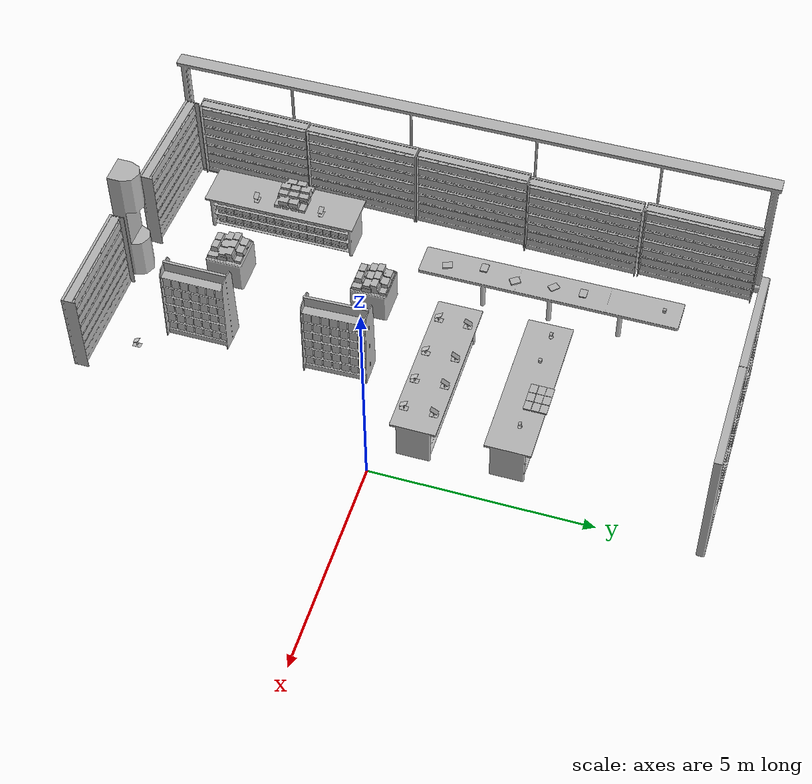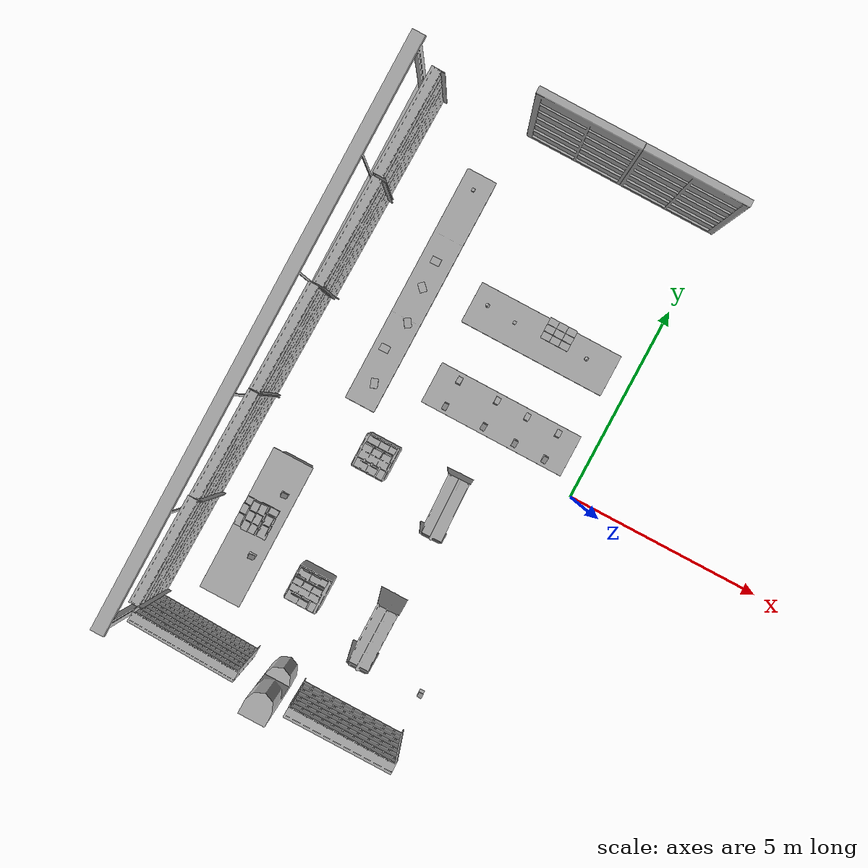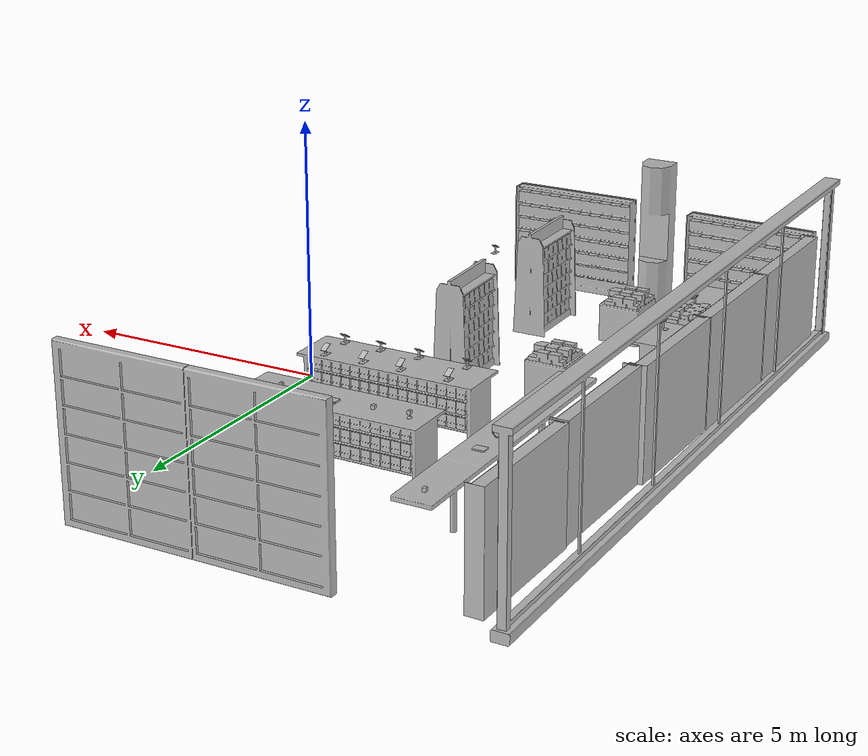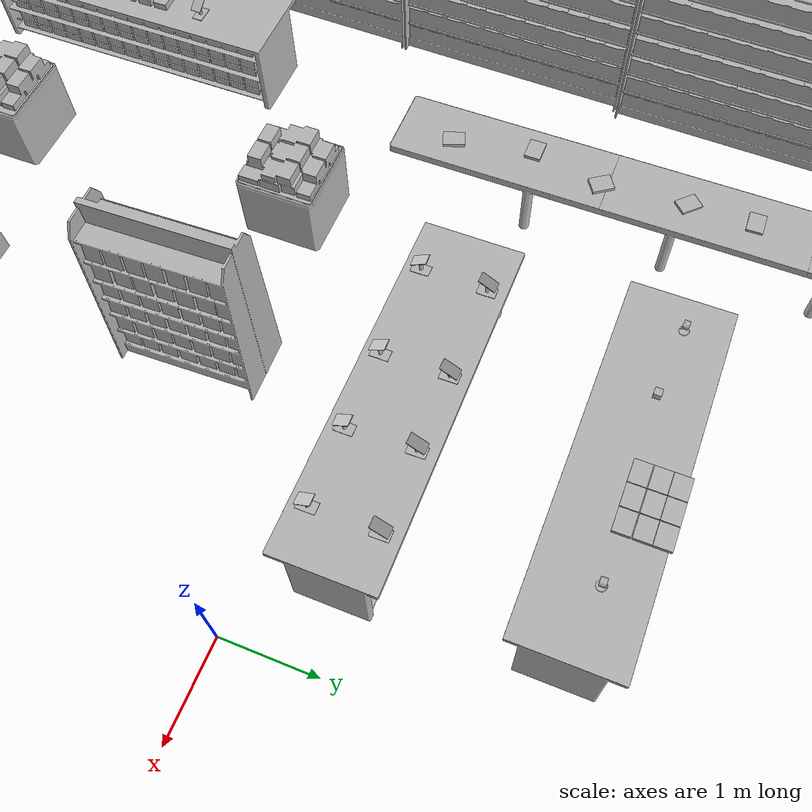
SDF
<sdf version="1.7">
 <world name="default">
  <model name="BookE_01_002">
   <link name="aws_robomaker_retail_BookE_01::link">
    <inertial>
     <mass>1</mass>
     <inertia><ixy>0</ixy><ixz>0</ixz><iyz>0</iyz><ixx>0.0666</ixx><iyy>0.0346</iyy><izz>0.0986</izz></inertia>
    </inertial>
    <collision name="collision">
     <geometry>
      <mesh>
       <uri>model://aws_robomaker_retail_BookE_01/meshes/aws_BookE_01_collision.DAE</uri>
       <scale>1 1 1</scale>
      </mesh>
     </geometry>
    </collision>
    <visual name="visual">
     <geometry>
      <mesh><uri>model://aws_robomaker_retail_BookE_01/meshes/aws_BookE_01_visual.DAE</uri></mesh>
     </geometry>
     <meta><layer>1</layer></meta>
    </visual>
   </link>
   <static>1</static>
   <pose>-5.414 3.33067 0.934015 -1e-06 -1e-06 -1.54109</pose>
  </model>
  <model name="BookE_01_006">
   <link name="aws_robomaker_retail_BookE_01::link">
    <inertial>
     <mass>1</mass>
     <inertia><ixy>0</ixy><ixz>0</ixz><iyz>0</iyz><ixx>0.0666</ixx><iyy>0.0346</iyy><izz>0.0986</izz></inertia>
    </inertial>
    <collision name="collision">
     <geometry>
      <mesh>
       <uri>model://aws_robomaker_retail_BookE_01/meshes/aws_BookE_01_collision.DAE</uri>
       <scale>1 1 1</scale>
      </mesh>
     </geometry>
    </collision>
    <visual name="visual">
     <geometry>
      <mesh><uri>model://aws_robomaker_retail_BookE_01/meshes/aws_BookE_01_visual.DAE</uri></mesh>
     </geometry>
     <meta><layer>1</layer></meta>
    </visual>
   </link>
   <static>1</static>
   <pose>-1.88942 3.34639 1.05494 0 -0 1.56816</pose>
  </model>
  <model name="BookE_01_007">
   <link name="aws_robomaker_retail_BookE_01::link">
    <inertial>
     <mass>1</mass>
     <inertia><ixy>0</ixy><ixz>0</ixz><iyz>0</iyz><ixx>0.0666</ixx><iyy>0.0346</iyy><izz>0.0986</izz></inertia>
    </inertial>
    <collision name="collision">
     <geometry>
      <mesh>
       <uri>model://aws_robomaker_retail_BookE_01/meshes/aws_BookE_01_collision.DAE</uri>
       <scale>1 1 1</scale>
      </mesh>
     </geometry>
    </collision>
    <visual name="visual">
     <geometry>
      <mesh><uri>model://aws_robomaker_retail_BookE_01/meshes/aws_BookE_01_visual.DAE</uri></mesh>
     </geometry>
     <meta><layer>1</layer></meta>
    </visual>
   </link>
   <static>1</static>
   <pose>-2.12373 3.34639 1.05494 0 -0 1.56816</pose>
  </model>
  <model name="BookE_01_008">
   <link name="aws_robomaker_retail_BookE_01::link">
    <inertial>
     <mass>1</mass>
     <inertia><ixy>0</ixy><ixz>0</ixz><iyz>0</iyz><ixx>0.0666</ixx><iyy>0.0346</iyy><izz>0.0986</izz></inertia>
    </inertial>
    <collision name="collision">
     <geometry>
      <mesh>
       <uri>model://aws_robomaker_retail_BookE_01/meshes/aws_BookE_01_collision.DAE</uri>
       <scale>1 1 1</scale>
      </mesh>
     </geometry>
    </collision>
    <visual name="visual">
     <geometry>
      <mesh><uri>model://aws_robomaker_retail_BookE_01/meshes/aws_BookE_01_visual.DAE</uri></mesh>
     </geometry>
     <meta><layer>1</layer></meta>
    </visual>
   </link>
   <static>1</static>
   <pose>-5.31512 1.77195 0.955242 3.14124 -0.072268 -2.52691</pose>
  </model>
  <model name="BookE_01_010">
   <link name="aws_robomaker_retail_BookE_01::link">
    <inertial>
     <mass>1</mass>
     <inertia><ixy>0</ixy><ixz>0</ixz><iyz>0</iyz><ixx>0.0666</ixx><iyy>0.0346</iyy><izz>0.0986</izz></inertia>
    </inertial>
    <collision name="collision">
     <geometry>
      <mesh>
       <uri>model://aws_robomaker_retail_BookE_01/meshes/aws_BookE_01_collision.DAE</uri>
       <scale>1 1 1</scale>
      </mesh>
     </geometry>
    </collision>
    <visual name="visual">
     <geometry>
      <mesh><uri>model://aws_robomaker_retail_BookE_01/meshes/aws_BookE_01_visual.DAE</uri></mesh>
     </geometry>
     <meta><layer>1</layer></meta>
    </visual>
   </link>
   <static>1</static>
   <pose>-5.50342 1.01206 0.941463 0 0 -1.56844</pose>
  </model>
  <model name="BookE_01_012">
   <link name="aws_robomaker_retail_BookE_01::link">
    <inertial>
     <mass>1</mass>
     <inertia><ixy>0</ixy><ixz>0</ixz><iyz>0</iyz><ixx>0.0666</ixx><iyy>0.0346</iyy><izz>0.0986</izz></inertia>
    </inertial>
    <collision name="collision">
     <geometry>
      <mesh>
       <uri>model://aws_robomaker_retail_BookE_01/meshes/aws_BookE_01_collision.DAE</uri>
       <scale>1 1 1</scale>
      </mesh>
     </geometry>
    </collision>
    <visual name="visual">
     <geometry>
      <mesh><uri>model://aws_robomaker_retail_BookE_01/meshes/aws_BookE_01_visual.DAE</uri></mesh>
     </geometry>
     <meta><layer>1</layer></meta>
    </visual>
   </link>
   <static>1</static>
   <pose>-5.33358 0.186186 0.949316 -1e-06 -0.004549 -2.79848</pose>
  </model>
  <model name="BookE_01_013">
   <link name="aws_robomaker_retail_BookE_01::link">
    <inertial>
     <mass>1</mass>
     <inertia><ixy>0</ixy><ixz>0</ixz><iyz>0</iyz><ixx>0.0666</ixx><iyy>0.0346</iyy><izz>0.0986</izz></inertia>
    </inertial>
    <collision name="collision">
     <geometry>
      <mesh>
       <uri>model://aws_robomaker_retail_BookE_01/meshes/aws_BookE_01_collision.DAE</uri>
       <scale>1 1 1</scale>
      </mesh>
     </geometry>
    </collision>
    <visual name="visual">
     <geometry>
      <mesh><uri>model://aws_robomaker_retail_BookE_01/meshes/aws_BookE_01_visual.DAE</uri></mesh>
     </geometry>
     <meta><layer>1</layer></meta>
    </visual>
   </link>
   <static>1</static>
   <pose>-5.40391 2.65088 0.931119 0.021204 -1e-06 -2.35575</pose>
  </model>
  <model name="BookE_01_014">
   <link name="aws_robomaker_retail_BookE_01::link">
    <inertial>
     <mass>1</mass>
     <inertia><ixy>0</ixy><ixz>0</ixz><iyz>0</iyz><ixx>0.0666</ixx><iyy>0.0346</iyy><izz>0.0986</izz></inertia>
    </inertial>
    <collision name="collision">
     <geometry>
      <mesh>
       <uri>model://aws_robomaker_retail_BookE_01/meshes/aws_BookE_01_collision.DAE</uri>
       <scale>1 1 1</scale>
      </mesh>
     </geometry>
    </collision>
    <visual name="visual">
     <geometry>
      <mesh><uri>model://aws_robomaker_retail_BookE_01/meshes/aws_BookE_01_visual.DAE</uri></mesh>
     </geometry>
     <meta><layer>1</layer></meta>
    </visual>
   </link>
   <static>1</static>
   <pose>-1.88942 2.99369 1.05494 0 -0 1.56816</pose>
  </model>
  <model name="BookE_01_015">
   <link name="aws_robomaker_retail_BookE_01::link">
    <inertial>
     <mass>1</mass>
     <inertia><ixy>0</ixy><ixz>0</ixz><iyz>0</iyz><ixx>0.0666</ixx><iyy>0.0346</iyy><izz>0.0986</izz></inertia>
    </inertial>
    <collision name="collision">
     <geometry>
      <mesh>
       <uri>model://aws_robomaker_retail_BookE_01/meshes/aws_BookE_01_collision.DAE</uri>
       <scale>1 1 1</scale>
      </mesh>
     </geometry>
    </collision>
    <visual name="visual">
     <geometry>
      <mesh><uri>model://aws_robomaker_retail_BookE_01/meshes/aws_BookE_01_visual.DAE</uri></mesh>
     </geometry>
     <meta><layer>1</layer></meta>
    </visual>
   </link>
   <static>1</static>
   <pose>-2.12373 2.99369 1.05494 0 -0 1.56816</pose>
  </model>
  <model name="BookE_01_016">
   <link name="aws_robomaker_retail_BookE_01::link">
    <inertial>
     <mass>1</mass>
     <inertia><ixy>0</ixy><ixz>0</ixz><iyz>0</iyz><ixx>0.0666</ixx><iyy>0.0346</iyy><izz>0.0986</izz></inertia>
    </inertial>
    <collision name="collision">
     <geometry>
      <mesh>
       <uri>model://aws_robomaker_retail_BookE_01/meshes/aws_BookE_01_collision.DAE</uri>
       <scale>1 1 1</scale>
      </mesh>
     </geometry>
    </collision>
    <visual name="visual">
     <geometry>
      <mesh><uri>model://aws_robomaker_retail_BookE_01/meshes/aws_BookE_01_visual.DAE</uri></mesh>
     </geometry>
     <meta><layer>1</layer></meta>
    </visual>
   </link>
   <static>1</static>
   <pose>-2.35737 2.99369 1.05494 0 -0 1.56816</pose>
  </model>
  <model name="BookE_01_017">
   <link name="aws_robomaker_retail_BookE_01::link">
    <inertial>
     <mass>1</mass>
     <inertia><ixy>0</ixy><ixz>0</ixz><iyz>0</iyz><ixx>0.0666</ixx><iyy>0.0346</iyy><izz>0.0986</izz></inertia>
    </inertial>
    <collision name="collision">
     <geometry>
      <mesh>
       <uri>model://aws_robomaker_retail_BookE_01/meshes/aws_BookE_01_collision.DAE</uri>
       <scale>1 1 1</scale>
      </mesh>
     </geometry>
    </collision>
    <visual name="visual">
     <geometry>
      <mesh><uri>model://aws_robomaker_retail_BookE_01/meshes/aws_BookE_01_visual.DAE</uri></mesh>
     </geometry>
     <meta><layer>1</layer></meta>
    </visual>
   </link>
   <static>1</static>
   <pose>-1.88942 3.17292 1.05494 0 -0 1.56816</pose>
  </model>
  <model name="BookE_01_018">
   <link name="aws_robomaker_retail_BookE_01::link">
    <inertial>
     <mass>1</mass>
     <inertia><ixy>0</ixy><ixz>0</ixz><iyz>0</iyz><ixx>0.0666</ixx><iyy>0.0346</iyy><izz>0.0986</izz></inertia>
    </inertial>
    <collision name="collision">
     <geometry>
      <mesh>
       <uri>model://aws_robomaker_retail_BookE_01/meshes/aws_BookE_01_collision.DAE</uri>
       <scale>1 1 1</scale>
      </mesh>
     </geometry>
    </collision>
    <visual name="visual">
     <geometry>
      <mesh><uri>model://aws_robomaker_retail_BookE_01/meshes/aws_BookE_01_visual.DAE</uri></mesh>
     </geometry>
     <meta><layer>1</layer></meta>
    </visual>
   </link>
   <static>1</static>
   <pose>-2.12373 3.17292 1.05494 0 -0 1.56816</pose>
  </model>
  <model name="BookE_01_019">
   <link name="aws_robomaker_retail_BookE_01::link">
    <inertial>
     <mass>1</mass>
     <inertia><ixy>0</ixy><ixz>0</ixz><iyz>0</iyz><ixx>0.0666</ixx><iyy>0.0346</iyy><izz>0.0986</izz></inertia>
    </inertial>
    <collision name="collision">
     <geometry>
      <mesh>
       <uri>model://aws_robomaker_retail_BookE_01/meshes/aws_BookE_01_collision.DAE</uri>
       <scale>1 1 1</scale>
      </mesh>
     </geometry>
    </collision>
    <visual name="visual">
     <geometry>
      <mesh><uri>model://aws_robomaker_retail_BookE_01/meshes/aws_BookE_01_visual.DAE</uri></mesh>
     </geometry>
     <meta><layer>1</layer></meta>
    </visual>
   </link>
   <static>1</static>
   <pose>-2.35737 3.17292 1.05494 0 -0 1.56816</pose>
  </model>
  <model name="BookE_01_030">
   <link name="aws_robomaker_retail_BookE_01::link">
    <inertial>
     <mass>1</mass>
     <inertia><ixy>0</ixy><ixz>0</ixz><iyz>0</iyz><ixx>0.0666</ixx><iyy>0.0346</iyy><izz>0.0986</izz></inertia>
    </inertial>
    <collision name="collision">
     <geometry>
      <mesh>
       <uri>model://aws_robomaker_retail_BookE_01/meshes/aws_BookE_01_collision.DAE</uri>
       <scale>1 1 1</scale>
      </mesh>
     </geometry>
    </collision>
    <visual name="visual">
     <geometry>
      <mesh><uri>model://aws_robomaker_retail_BookE_01/meshes/aws_BookE_01_visual.DAE</uri></mesh>
     </geometry>
     <meta><layer>1</layer></meta>
    </visual>
   </link>
   <static>1</static>
   <pose>-2.35737 3.34639 1.05494 0 -0 1.56816</pose>
  </model>
  <model name="BookD_01_002">
   <link name="aws_robomaker_retail_BookD_01::link">
    <inertial><mass>0.5</mass></inertial>
    <collision name="collision">
     <geometry>
      <mesh>
       <uri>model://aws_robomaker_retail_BookD_01/meshes/aws_BookD_01_collision.DAE</uri>
       <scale>1 1 1</scale>
      </mesh>
     </geometry>
    </collision>
    <visual name="visual">
     <geometry>
      <mesh><uri>model://aws_robomaker_retail_BookD_01/meshes/aws_BookD_01_visual.DAE</uri></mesh>
     </geometry>
     <meta><layer>1</layer></meta>
    </visual>
   </link>
   <static>1</static>
   <pose>-4.50961 -1.31254 0.804482 0 0 -4e-06</pose>
  </model>
  <model name="BookF_01_003">
   <link name="aws_robomaker_retail_BookF_01::link">
    <inertial>
     <mass>10</mass>
     <inertia>
      <ixx>0.583817</ixx>
      <ixy>0</ixy>
      <ixz>0</ixz>
      <iyy>0.502925</iyy>
      <iyz>0</iyz>
      <izz>0.99304</izz>
     </inertia>
    </inertial>
    <collision name="collision">
     <geometry>
      <mesh>
       <uri>model://aws_robomaker_retail_BookF_01/meshes/aws_BookF_01_collision.DAE</uri>
       <scale>1 1 1</scale>
      </mesh>
     </geometry>
    </collision>
    <visual name="visual">
     <geometry>
      <mesh><uri>model://aws_robomaker_retail_BookF_01/meshes/aws_BookF_01_visual.DAE</uri></mesh>
     </geometry>
     <meta><layer>1</layer></meta>
    </visual>
   </link>
   <static>1</static>
   <pose>-4.46642 -4.75697 0.804483 4e-06 -0 0</pose>
  </model>
  <model name="BookD_01_003">
   <link name="aws_robomaker_retail_BookD_01::link">
    <inertial><mass>0.5</mass></inertial>
    <collision name="collision">
     <geometry>
      <mesh>
       <uri>model://aws_robomaker_retail_BookD_01/meshes/aws_BookD_01_collision.DAE</uri>
       <scale>1 1 1</scale>
      </mesh>
     </geometry>
    </collision>
    <visual name="visual">
     <geometry>
      <mesh><uri>model://aws_robomaker_retail_BookD_01/meshes/aws_BookD_01_visual.DAE</uri></mesh>
     </geometry>
     <meta><layer>1</layer></meta>
    </visual>
   </link>
   <static>1</static>
   <pose>-6.23561 -3.78518 1.03816 8e-06 -0 1.58038</pose>
  </model>
  <model name="BookshelfA_01_003">
   <link name="aws_robomaker_retail_BookshelfA_01::link">
    <inertial>
     <mass>50</mass>
     <inertia><ixx>27.7341</ixx><ixy>0</ixy><ixz>0</ixz><iyy>20.9361</iyy><iyz>0</iyz><izz>11.3596</izz></inertia>
    </inertial>
    <collision name="collision">
     <geometry>
      <mesh>
       <uri>model://aws_robomaker_retail_BookshelfA_01/meshes/aws_BookshelfA_01_collision.DAE</uri>
       <scale>1 1 1</scale>
      </mesh>
     </geometry>
    </collision>
    <visual name="visual">
     <geometry>
      <mesh><uri>model://aws_robomaker_retail_BookshelfA_01/meshes/aws_BookshelfA_01_visual.DAE</uri></mesh>
     </geometry>
     <meta><layer>1</layer></meta>
    </visual>
   </link>
   <static>1</static>
   <pose>-2.55449 -1.48746 0.006337 0.001313 -0.001987 0.031824</pose>
  </model>
  <model name="BookshelfA_01_004">
   <link name="aws_robomaker_retail_BookshelfA_01::link">
    <inertial>
     <mass>50</mass>
     <inertia><ixx>27.7341</ixx><ixy>0</ixy><ixz>0</ixz><iyy>20.9361</iyy><iyz>0</iyz><izz>11.3596</izz></inertia>
    </inertial>
    <collision name="collision">
     <geometry>
      <mesh>
       <uri>model://aws_robomaker_retail_BookshelfA_01/meshes/aws_BookshelfA_01_collision.DAE</uri>
       <scale>1 1 1</scale>
      </mesh>
     </geometry>
    </collision>
    <visual name="visual">
     <geometry>
      <mesh><uri>model://aws_robomaker_retail_BookshelfA_01/meshes/aws_BookshelfA_01_visual.DAE</uri></mesh>
     </geometry>
     <meta><layer>1</layer></meta>
    </visual>
   </link>
   <static>1</static>
   <pose>-2.60858 -4.76165 0.003411 0 -0 0</pose>
  </model>
  <model name="BookshelfB_01_001">
   <link name="aws_robomaker_retail_BookshelfB_01::link">
    <inertial>
     <mass>50</mass>
     <inertia><ixx>19.8742</ixx><ixy>0</ixy><ixz>0</ixz><iyy>49.1263</iyy><iyz>0</iyz><izz>30.2231</izz></inertia>
    </inertial>
    <collision name="collision">
     <geometry>
      <mesh>
       <uri>model://aws_robomaker_retail_BookshelfB_01/meshes/aws_BookshelfB_01_collision.DAE</uri>
       <scale>1 1 1</scale>
      </mesh>
     </geometry>
    </collision>
    <visual name="visual">
     <geometry>
      <mesh><uri>model://aws_robomaker_retail_BookshelfB_01/meshes/aws_BookshelfB_01_visual.DAE</uri></mesh>
     </geometry>
     <meta><layer>1</layer></meta>
    </visual>
   </link>
   <static>1</static>
   <pose>-6.18968 -6.78565 -0.008942 0.003533 0.000121 -0.032073</pose>
  </model>
  <model name="BookshelfB_01_002">
   <link name="aws_robomaker_retail_BookshelfB_01::link">
    <inertial>
     <mass>50</mass>
     <inertia><ixx>19.8742</ixx><ixy>0</ixy><ixz>0</ixz><iyy>49.1263</iyy><iyz>0</iyz><izz>30.2231</izz></inertia>
    </inertial>
    <collision name="collision">
     <geometry>
      <mesh>
       <uri>model://aws_robomaker_retail_BookshelfB_01/meshes/aws_BookshelfB_01_collision.DAE</uri>
       <scale>1 1 1</scale>
      </mesh>
     </geometry>
    </collision>
    <visual name="visual">
     <geometry>
      <mesh><uri>model://aws_robomaker_retail_BookshelfB_01/meshes/aws_BookshelfB_01_visual.DAE</uri></mesh>
     </geometry>
     <meta><layer>1</layer></meta>
    </visual>
   </link>
   <static>1</static>
   <pose>-2.20941 -6.97146 0.017074 -0.000128 -0.000252 0.000364</pose>
  </model>
  <model name="BookshelfC_01_003">
   <link name="aws_robomaker_retail_BookshelfC_01::link">
    <inertial>
     <mass>50</mass>
     <inertia><ixx>5.5865</ixx><ixy>0</ixy><ixz>0</ixz><iyy>5.47324</iyy><iyz>0</iyz><izz>6.23277</izz></inertia>
    </inertial>
    <collision name="collision">
     <geometry>
      <mesh>
       <uri>model://aws_robomaker_retail_BookshelfC_01/meshes/aws_BookshelfC_01_collision.DAE</uri>
       <scale>1 1 1</scale>
      </mesh>
     </geometry>
    </collision>
    <visual name="visual">
     <geometry>
      <mesh><uri>model://aws_robomaker_retail_BookshelfC_01/meshes/aws_BookshelfC_01_visual.DAE</uri></mesh>
     </geometry>
     <meta><layer>1</layer></meta>
    </visual>
   </link>
   <static>1</static>
   <pose>-4.51711 -1.31023 0.045908 0 -0 0</pose>
  </model>
  <model name="BookshelfC_01_004">
   <link name="aws_robomaker_retail_BookshelfC_01::link">
    <inertial>
     <mass>50</mass>
     <inertia><ixx>5.5865</ixx><ixy>0</ixy><ixz>0</ixz><iyy>5.47324</iyy><iyz>0</iyz><izz>6.23277</izz></inertia>
    </inertial>
    <collision name="collision">
     <geometry>
      <mesh>
       <uri>model://aws_robomaker_retail_BookshelfC_01/meshes/aws_BookshelfC_01_collision.DAE</uri>
       <scale>1 1 1</scale>
      </mesh>
     </geometry>
    </collision>
    <visual name="visual">
     <geometry>
      <mesh><uri>model://aws_robomaker_retail_BookshelfC_01/meshes/aws_BookshelfC_01_visual.DAE</uri></mesh>
     </geometry>
     <meta><layer>1</layer></meta>
    </visual>
   </link>
   <static>1</static>
   <pose>-4.44754 -4.74726 0.045908 0 -0 0</pose>
  </model>
  <model name="ColumnB_01_002">
   <link name="aws_robomaker_retail_ColumnB_01::link">
    <inertial>
     <mass>50</mass>
     <inertia><ixx>44.5597</ixx><ixy>0</ixy><ixz>0</ixz><iyy>44.5597</iyy><iyz>0</iyz><izz>1.87942</izz></inertia>
    </inertial>
    <collision name="collision">
     <geometry>
      <mesh>
       <uri>model://aws_robomaker_retail_ColumnB_01/meshes/aws_ColumnB_01_collision.DAE</uri>
       <scale>1 1 1</scale>
      </mesh>
     </geometry>
    </collision>
    <visual name="visual">
     <geometry>
      <mesh><uri>model://aws_robomaker_retail_ColumnB_01/meshes/aws_ColumnB_01_visual.DAE</uri></mesh>
     </geometry>
     <meta><layer>1</layer></meta>
    </visual>
   </link>
   <static>1</static>
   <pose>-4.07623 -6.86071 0.017511 0.001895 -0.000628 -0.003755</pose>
  </model>
  <model name="SecurityCamera_01_001">
   <link name="aws_robomaker_retail_SecurityCamera_01::link">
    <inertial>
     <mass>1</mass>
     <inertia>
      <ixx>18.2222</ixx>
      <ixy>0</ixy>
      <ixz>0</ixz>
      <iyy>18.2222</iyy>
      <iyz>0</iyz>
      <izz>0.0018767</izz>
     </inertia>
    </inertial>
    <collision name="collision">
     <geometry>
      <mesh>
       <uri>model://aws_robomaker_retail_SecurityCamera_01/meshes/aws_SecurityCamera_01_collision.DAE</uri>
       <scale>1 1 1</scale>
      </mesh>
     </geometry>
    </collision>
    <visual name="visual">
     <geometry>
      <mesh><uri>model://aws_robomaker_retail_SecurityCamera_01/meshes/aws_SecurityCamera_01_visual.DAE</uri></mesh>
     </geometry>
     <meta><layer>2</layer></meta>
    </visual>
   </link>
   <static>1</static>
   <pose>-1.30881 2.97371 1.03776 -0.004006 -9.7e-05 -0.01066</pose>
  </model>
  <model name="SecurityCamera_01_002">
   <link name="aws_robomaker_retail_SecurityCamera_01::link">
    <inertial>
     <mass>1</mass>
     <inertia>
      <ixx>18.2222</ixx>
      <ixy>0</ixy>
      <ixz>0</ixz>
      <iyy>18.2222</iyy>
      <iyz>0</iyz>
      <izz>0.0018767</izz>
     </inertia>
    </inertial>
    <collision name="collision">
     <geometry>
      <mesh>
       <uri>model://aws_robomaker_retail_SecurityCamera_01/meshes/aws_SecurityCamera_01_collision.DAE</uri>
       <scale>1 1 1</scale>
      </mesh>
     </geometry>
    </collision>
    <visual name="visual">
     <geometry>
      <mesh><uri>model://aws_robomaker_retail_SecurityCamera_01/meshes/aws_SecurityCamera_01_visual.DAE</uri></mesh>
     </geometry>
     <meta><layer>2</layer></meta>
    </visual>
   </link>
   <static>1</static>
   <pose>-3.88042 2.98003 1.03776 0 -0 3.05091</pose>
  </model>
  <model name="DeskB_01_002">
   <link name="aws_robomaker_retail_DeskB_01::link">
    <inertial>
     <mass>50</mass>
     <inertia><ixx>154.884</ixx><ixy>0</ixy><ixz>0</ixz><iyy>7.48424</iyy><iyz>0</iyz><izz>152.099</izz></inertia>
    </inertial>
    <collision name="collision">
     <geometry>
      <mesh>
       <uri>model://aws_robomaker_retail_DeskB_01/meshes/aws_DeskB_01_collision.DAE</uri>
       <scale>1 1 1</scale>
      </mesh>
     </geometry>
    </collision>
    <visual name="visual">
     <geometry>
      <mesh><uri>model://aws_robomaker_retail_DeskB_01/meshes/aws_DeskB_01_visual.DAE</uri></mesh>
     </geometry>
     <meta><layer>1</layer></meta>
    </visual>
   </link>
   <static>1</static>
   <pose>-5.40071 2.58054 -0.181282 0 -0 0</pose>
  </model>
  <model name="DeskA_01_001">
   <link name="aws_robomaker_retail_DeskA_01::link">
    <inertial>
     <mass>20</mass>
     <inertia><ixx>3.49717</ixx><ixy>0</ixy><ixz>0</ixz><iyy>23.5599</iyy><iyz>0</iyz><izz>23.5702</izz></inertia>
    </inertial>
    <collision name="collision">
     <geometry>
      <mesh>
       <uri>model://aws_robomaker_retail_DeskA_01/meshes/aws_DeskA_01_collision.DAE</uri>
       <scale>1 1 1</scale>
      </mesh>
     </geometry>
    </collision>
    <visual name="visual">
     <geometry>
      <mesh><uri>model://aws_robomaker_retail_DeskA_01/meshes/aws_DeskA_01_visual.DAE</uri></mesh>
     </geometry>
     <meta><layer>1</layer></meta>
    </visual>
   </link>
   <static>1</static>
   <pose>-2.42972 2.89014 0.014921 0.000124 -1e-05 0.000376</pose>
  </model>
  <model name="DeskA_01_002">
   <link name="aws_robomaker_retail_DeskA_01::link">
    <inertial>
     <mass>20</mass>
     <inertia><ixx>3.49717</ixx><ixy>0</ixy><ixz>0</ixz><iyy>23.5599</iyy><iyz>0</iyz><izz>23.5702</izz></inertia>
    </inertial>
    <collision name="collision">
     <geometry>
      <mesh>
       <uri>model://aws_robomaker_retail_DeskA_01/meshes/aws_DeskA_01_collision.DAE</uri>
       <scale>1 1 1</scale>
      </mesh>
     </geometry>
    </collision>
    <visual name="visual">
     <geometry>
      <mesh><uri>model://aws_robomaker_retail_DeskA_01/meshes/aws_DeskA_01_visual.DAE</uri></mesh>
     </geometry>
     <meta><layer>1</layer></meta>
    </visual>
   </link>
   <static>1</static>
   <pose>-2.36994 0.836099 0.00876 -0.000772 -0.001938 1.7e-05</pose>
  </model>
  <model name="DeskA_01_003">
   <link name="aws_robomaker_retail_DeskA_01::link">
    <inertial>
     <mass>20</mass>
     <inertia><ixx>3.49717</ixx><ixy>0</ixy><ixz>0</ixz><iyy>23.5599</iyy><iyz>0</iyz><izz>23.5702</izz></inertia>
    </inertial>
    <collision name="collision">
     <geometry>
      <mesh>
       <uri>model://aws_robomaker_retail_DeskA_01/meshes/aws_DeskA_01_collision.DAE</uri>
       <scale>1 1 1</scale>
      </mesh>
     </geometry>
    </collision>
    <visual name="visual">
     <geometry>
      <mesh><uri>model://aws_robomaker_retail_DeskA_01/meshes/aws_DeskA_01_visual.DAE</uri></mesh>
     </geometry>
     <meta><layer>1</layer></meta>
    </visual>
   </link>
   <static>1</static>
   <pose>-6.14879 -3.99699 -0.004603 0.001948 0.001361 -1.56957</pose>
  </model>
  <model name="DoorB_01_001">
   <link name="aws_robomaker_retail_DoorB_01::link">
    <inertial>
     <mass>50</mass>
     <inertia><ixx>44.5597</ixx><ixy>0</ixy><ixz>0</ixz><iyy>151.699</iyy><iyz>0</iyz><izz>107.806</izz></inertia>
    </inertial>
    <collision name="collision">
     <geometry>
      <mesh>
       <uri>model://aws_robomaker_retail_DoorB_01/meshes/aws_DoorB_01_collision.DAE</uri>
       <scale>1 1 1</scale>
      </mesh>
     </geometry>
    </collision>
    <visual name="visual">
     <geometry>
      <mesh><uri>model://aws_robomaker_retail_DoorB_01/meshes/aws_DoorB_01_visual.DAE</uri></mesh>
     </geometry>
     <meta><layer>2</layer></meta>
    </visual>
   </link>
   <static>1</static>
   <pose>-2.49246 7.21937 -0.035203 0 -0 0</pose>
  </model>
  <model name="TabletB_01_004">
   <link name="aws_robomaker_retail_TabletB_01::link">
    <inertial>
     <mass>0.161</mass>
     <inertia>
      <ixx>0.346954</ixx>
      <ixy>0</ixy>
      <ixz>0</ixz>
      <iyy>0.177288</iyy>
      <iyz>0</iyz>
      <izz>0.521826</izz>
     </inertia>
    </inertial>
    <collision name="collision">
     <geometry>
      <mesh>
       <uri>model://aws_robomaker_retail_TabletB_01/meshes/aws_TabletB_01_collision.DAE</uri>
       <scale>1 1 1</scale>
      </mesh>
     </geometry>
    </collision>
    <visual name="visual">
     <geometry>
      <mesh><uri>model://aws_robomaker_retail_TabletB_01/meshes/aws_TabletB_01_visual.DAE</uri></mesh>
     </geometry>
     <meta><layer>1</layer></meta>
    </visual>
   </link>
   <static>1</static>
   <pose>-1.03658 -5.57073 1.18472 0.550862 -0.007302 0</pose>
  </model>
  <model name="TabletB_01_011">
   <link name="aws_robomaker_retail_TabletB_01::link">
    <inertial>
     <mass>0.161</mass>
     <inertia>
      <ixx>0.346954</ixx>
      <ixy>0</ixy>
      <ixz>0</ixz>
      <iyy>0.177288</iyy>
      <iyz>0</iyz>
      <izz>0.521826</izz>
     </inertia>
    </inertial>
    <collision name="collision">
     <geometry>
      <mesh>
       <uri>model://aws_robomaker_retail_TabletB_01/meshes/aws_TabletB_01_collision.DAE</uri>
       <scale>1 1 1</scale>
      </mesh>
     </geometry>
    </collision>
    <visual name="visual">
     <geometry>
      <mesh><uri>model://aws_robomaker_retail_TabletB_01/meshes/aws_TabletB_01_visual.DAE</uri></mesh>
     </geometry>
     <meta><layer>1</layer></meta>
    </visual>
   </link>
   <static>1</static>
   <pose>-5.91505 -3.03174 1.18472 0.518384 0.023341 1.56451</pose>
  </model>
  <model name="TabletB_01_012">
   <link name="aws_robomaker_retail_TabletB_01::link">
    <inertial>
     <mass>0.161</mass>
     <inertia>
      <ixx>0.346954</ixx>
      <ixy>0</ixy>
      <ixz>0</ixz>
      <iyy>0.177288</iyy>
      <iyz>0</iyz>
      <izz>0.521826</izz>
     </inertia>
    </inertial>
    <collision name="collision">
     <geometry>
      <mesh>
       <uri>model://aws_robomaker_retail_TabletB_01/meshes/aws_TabletB_01_collision.DAE</uri>
       <scale>1 1 1</scale>
      </mesh>
     </geometry>
    </collision>
    <visual name="visual">
     <geometry>
      <mesh><uri>model://aws_robomaker_retail_TabletB_01/meshes/aws_TabletB_01_visual.DAE</uri></mesh>
     </geometry>
     <meta><layer>1</layer></meta>
    </visual>
   </link>
   <static>1</static>
   <pose>-5.91505 -4.6124 1.18472 0.518384 0.023341 1.56451</pose>
  </model>
  <model name="Tablet_01_001">
   <link name="aws_robomaker_retail_Tablet_01::link">
    <inertial>
     <mass>0.5</mass>
     <inertia><ixx>0.035652</ixx><ixy>0</ixy><ixz>0</ixz><iyy>0.01</iyy><iyz>0</iyz><izz>0.041207</izz></inertia>
    </inertial>
    <collision name="collision">
     <geometry>
      <mesh>
       <uri>model://aws_robomaker_retail_Tablet_01/meshes/aws_Tablet_01_collision.DAE</uri>
       <scale>1 1 1</scale>
      </mesh>
     </geometry>
    </collision>
    <visual name="visual">
     <geometry>
      <mesh><uri>model://aws_robomaker_retail_Tablet_01/meshes/aws_Tablet_01_visual.DAE</uri></mesh>
     </geometry>
     <meta><layer>2</layer></meta>
    </visual>
   </link>
   <static>1</static>
   <pose>-1.8461 0.489109 1.18055 0.579329 0.041534 -0.007936</pose>
  </model>
  <model name="Tablet_01_002">
   <link name="aws_robomaker_retail_Tablet_01::link">
    <inertial>
     <mass>0.5</mass>
     <inertia><ixx>0.035652</ixx><ixy>0</ixy><ixz>0</ixz><iyy>0.01</iyy><iyz>0</iyz><izz>0.041207</izz></inertia>
    </inertial>
    <collision name="collision">
     <geometry>
      <mesh>
       <uri>model://aws_robomaker_retail_Tablet_01/meshes/aws_Tablet_01_collision.DAE</uri>
       <scale>1 1 1</scale>
      </mesh>
     </geometry>
    </collision>
    <visual name="visual">
     <geometry>
      <mesh><uri>model://aws_robomaker_retail_Tablet_01/meshes/aws_Tablet_01_visual.DAE</uri></mesh>
     </geometry>
     <meta><layer>2</layer></meta>
    </visual>
   </link>
   <static>1</static>
   <pose>-2.65015 0.489109 1.18055 0.579329 0.041534 -0.007936</pose>
  </model>
  <model name="Tablet_01_003">
   <link name="aws_robomaker_retail_Tablet_01::link">
    <inertial>
     <mass>0.5</mass>
     <inertia><ixx>0.035652</ixx><ixy>0</ixy><ixz>0</ixz><iyy>0.01</iyy><iyz>0</iyz><izz>0.041207</izz></inertia>
    </inertial>
    <collision name="collision">
     <geometry>
      <mesh>
       <uri>model://aws_robomaker_retail_Tablet_01/meshes/aws_Tablet_01_collision.DAE</uri>
       <scale>1 1 1</scale>
      </mesh>
     </geometry>
    </collision>
    <visual name="visual">
     <geometry>
      <mesh><uri>model://aws_robomaker_retail_Tablet_01/meshes/aws_Tablet_01_visual.DAE</uri></mesh>
     </geometry>
     <meta><layer>2</layer></meta>
    </visual>
   </link>
   <static>1</static>
   <pose>-1.06927 0.489109 1.18055 0.579329 0.041534 -0.007936</pose>
  </model>
  <model name="Tablet_01_004">
   <link name="aws_robomaker_retail_Tablet_01::link">
    <inertial>
     <mass>0.5</mass>
     <inertia><ixx>0.035652</ixx><ixy>0</ixy><ixz>0</ixz><iyy>0.01</iyy><iyz>0</iyz><izz>0.041207</izz></inertia>
    </inertial>
    <collision name="collision">
     <geometry>
      <mesh>
       <uri>model://aws_robomaker_retail_Tablet_01/meshes/aws_Tablet_01_collision.DAE</uri>
       <scale>1 1 1</scale>
      </mesh>
     </geometry>
    </collision>
    <visual name="visual">
     <geometry>
      <mesh><uri>model://aws_robomaker_retail_Tablet_01/meshes/aws_Tablet_01_visual.DAE</uri></mesh>
     </geometry>
     <meta><layer>2</layer></meta>
    </visual>
   </link>
   <static>1</static>
   <pose>-3.63933 0.489109 1.18055 0.579329 0.041534 -0.007936</pose>
  </model>
  <model name="Tablet_01_005">
   <link name="aws_robomaker_retail_Tablet_01::link">
    <inertial>
     <mass>0.5</mass>
     <inertia><ixx>0.035652</ixx><ixy>0</ixy><ixz>0</ixz><iyy>0.01</iyy><iyz>0</iyz><izz>0.041207</izz></inertia>
    </inertial>
    <collision name="collision">
     <geometry>
      <mesh>
       <uri>model://aws_robomaker_retail_Tablet_01/meshes/aws_Tablet_01_collision.DAE</uri>
       <scale>1 1 1</scale>
      </mesh>
     </geometry>
    </collision>
    <visual name="visual">
     <geometry>
      <mesh><uri>model://aws_robomaker_retail_Tablet_01/meshes/aws_Tablet_01_visual.DAE</uri></mesh>
     </geometry>
     <meta><layer>2</layer></meta>
    </visual>
   </link>
   <static>1</static>
   <pose>-1.07268 1.16382 1.17789 0.513308 -1e-06 3.11006</pose>
  </model>
  <model name="Tablet_01_006">
   <link name="aws_robomaker_retail_Tablet_01::link">
    <inertial>
     <mass>0.5</mass>
     <inertia><ixx>0.035652</ixx><ixy>0</ixy><ixz>0</ixz><iyy>0.01</iyy><iyz>0</iyz><izz>0.041207</izz></inertia>
    </inertial>
    <collision name="collision">
     <geometry>
      <mesh>
       <uri>model://aws_robomaker_retail_Tablet_01/meshes/aws_Tablet_01_collision.DAE</uri>
       <scale>1 1 1</scale>
      </mesh>
     </geometry>
    </collision>
    <visual name="visual">
     <geometry>
      <mesh><uri>model://aws_robomaker_retail_Tablet_01/meshes/aws_Tablet_01_visual.DAE</uri></mesh>
     </geometry>
     <meta><layer>2</layer></meta>
    </visual>
   </link>
   <static>1</static>
   <pose>-1.87669 1.16382 1.17789 0.513308 -1e-06 3.11006</pose>
  </model>
  <model name="Tablet_01_007">
   <link name="aws_robomaker_retail_Tablet_01::link">
    <inertial>
     <mass>0.5</mass>
     <inertia><ixx>0.035652</ixx><ixy>0</ixy><ixz>0</ixz><iyy>0.01</iyy><iyz>0</iyz><izz>0.041207</izz></inertia>
    </inertial>
    <collision name="collision">
     <geometry>
      <mesh>
       <uri>model://aws_robomaker_retail_Tablet_01/meshes/aws_Tablet_01_collision.DAE</uri>
       <scale>1 1 1</scale>
      </mesh>
     </geometry>
    </collision>
    <visual name="visual">
     <geometry>
      <mesh><uri>model://aws_robomaker_retail_Tablet_01/meshes/aws_Tablet_01_visual.DAE</uri></mesh>
     </geometry>
     <meta><layer>2</layer></meta>
    </visual>
   </link>
   <static>1</static>
   <pose>-2.64967 1.16382 1.17789 0.513308 -1e-06 3.11006</pose>
  </model>
  <model name="Tablet_01_008">
   <link name="aws_robomaker_retail_Tablet_01::link">
    <inertial>
     <mass>0.5</mass>
     <inertia><ixx>0.035652</ixx><ixy>0</ixy><ixz>0</ixz><iyy>0.01</iyy><iyz>0</iyz><izz>0.041207</izz></inertia>
    </inertial>
    <collision name="collision">
     <geometry>
      <mesh>
       <uri>model://aws_robomaker_retail_Tablet_01/meshes/aws_Tablet_01_collision.DAE</uri>
       <scale>1 1 1</scale>
      </mesh>
     </geometry>
    </collision>
    <visual name="visual">
     <geometry>
      <mesh><uri>model://aws_robomaker_retail_Tablet_01/meshes/aws_Tablet_01_visual.DAE</uri></mesh>
     </geometry>
     <meta><layer>2</layer></meta>
    </visual>
   </link>
   <static>1</static>
   <pose>-3.63655 1.16382 1.17789 0.513308 -1e-06 3.11006</pose>
  </model>
  <model name="Holder_01_003">
   <link name="aws_robomaker_retail_Holder_01::link">
    <inertial><mass>1</mass></inertial>
    <collision name="collision">
     <geometry>
      <mesh>
       <uri>model://aws_robomaker_retail_Holder_01/meshes/aws_Holder_01_collision.DAE</uri>
       <scale>1 1 1</scale>
      </mesh>
     </geometry>
    </collision>
    <visual name="visual">
     <geometry>
      <mesh><uri>model://aws_robomaker_retail_Holder_01/meshes/aws_Holder_01_visual.DAE</uri></mesh>
     </geometry>
     <meta><layer>2</layer></meta>
    </visual>
   </link>
   <static>1</static>
   <pose>-1.03584 -5.57119 1.03776 0 -0 0</pose>
  </model>
  <model name="Holder_01_005">
   <link name="aws_robomaker_retail_Holder_01::link">
    <inertial><mass>1</mass></inertial>
    <collision name="collision">
     <geometry>
      <mesh>
       <uri>model://aws_robomaker_retail_Holder_01/meshes/aws_Holder_01_collision.DAE</uri>
       <scale>1 1 1</scale>
      </mesh>
     </geometry>
    </collision>
    <visual name="visual">
     <geometry>
      <mesh><uri>model://aws_robomaker_retail_Holder_01/meshes/aws_Holder_01_visual.DAE</uri></mesh>
     </geometry>
     <meta><layer>2</layer></meta>
    </visual>
   </link>
   <static>1</static>
   <pose>-1.84662 0.495602 1.03776 0 -0 0</pose>
  </model>
  <model name="Holder_01_006">
   <link name="aws_robomaker_retail_Holder_01::link">
    <inertial><mass>1</mass></inertial>
    <collision name="collision">
     <geometry>
      <mesh>
       <uri>model://aws_robomaker_retail_Holder_01/meshes/aws_Holder_01_collision.DAE</uri>
       <scale>1 1 1</scale>
      </mesh>
     </geometry>
    </collision>
    <visual name="visual">
     <geometry>
      <mesh><uri>model://aws_robomaker_retail_Holder_01/meshes/aws_Holder_01_visual.DAE</uri></mesh>
     </geometry>
     <meta><layer>2</layer></meta>
    </visual>
   </link>
   <static>1</static>
   <pose>-2.64781 0.495602 1.03776 0 -0 0</pose>
  </model>
  <model name="Holder_01_007">
   <link name="aws_robomaker_retail_Holder_01::link">
    <inertial><mass>1</mass></inertial>
    <collision name="collision">
     <geometry>
      <mesh>
       <uri>model://aws_robomaker_retail_Holder_01/meshes/aws_Holder_01_collision.DAE</uri>
       <scale>1 1 1</scale>
      </mesh>
     </geometry>
    </collision>
    <visual name="visual">
     <geometry>
      <mesh><uri>model://aws_robomaker_retail_Holder_01/meshes/aws_Holder_01_visual.DAE</uri></mesh>
     </geometry>
     <meta><layer>2</layer></meta>
    </visual>
   </link>
   <static>1</static>
   <pose>-1.07242 0.495602 1.03776 0 -0 0</pose>
  </model>
  <model name="Holder_01_008">
   <link name="aws_robomaker_retail_Holder_01::link">
    <inertial><mass>1</mass></inertial>
    <collision name="collision">
     <geometry>
      <mesh>
       <uri>model://aws_robomaker_retail_Holder_01/meshes/aws_Holder_01_collision.DAE</uri>
       <scale>1 1 1</scale>
      </mesh>
     </geometry>
    </collision>
    <visual name="visual">
     <geometry>
      <mesh><uri>model://aws_robomaker_retail_Holder_01/meshes/aws_Holder_01_visual.DAE</uri></mesh>
     </geometry>
     <meta><layer>2</layer></meta>
    </visual>
   </link>
   <static>1</static>
   <pose>-3.63958 0.495602 1.03776 0 -0 0</pose>
  </model>
  <model name="Holder_01_009">
   <link name="aws_robomaker_retail_Holder_01::link">
    <inertial><mass>1</mass></inertial>
    <collision name="collision">
     <geometry>
      <mesh>
       <uri>model://aws_robomaker_retail_Holder_01/meshes/aws_Holder_01_collision.DAE</uri>
       <scale>1 1 1</scale>
      </mesh>
     </geometry>
    </collision>
    <visual name="visual">
     <geometry>
      <mesh><uri>model://aws_robomaker_retail_Holder_01/meshes/aws_Holder_01_visual.DAE</uri></mesh>
     </geometry>
     <meta><layer>2</layer></meta>
    </visual>
   </link>
   <static>1</static>
   <pose>-1.07293 1.16083 1.03776 0 0 -3.13015</pose>
  </model>
  <model name="Holder_01_010">
   <link name="aws_robomaker_retail_Holder_01::link">
    <inertial><mass>1</mass></inertial>
    <collision name="collision">
     <geometry>
      <mesh>
       <uri>model://aws_robomaker_retail_Holder_01/meshes/aws_Holder_01_collision.DAE</uri>
       <scale>1 1 1</scale>
      </mesh>
     </geometry>
    </collision>
    <visual name="visual">
     <geometry>
      <mesh><uri>model://aws_robomaker_retail_Holder_01/meshes/aws_Holder_01_visual.DAE</uri></mesh>
     </geometry>
     <meta><layer>2</layer></meta>
    </visual>
   </link>
   <static>1</static>
   <pose>-1.87489 1.16083 1.03776 0 0 -3.13015</pose>
  </model>
  <model name="Holder_01_011">
   <link name="aws_robomaker_retail_Holder_01::link">
    <inertial><mass>1</mass></inertial>
    <collision name="collision">
     <geometry>
      <mesh>
       <uri>model://aws_robomaker_retail_Holder_01/meshes/aws_Holder_01_collision.DAE</uri>
       <scale>1 1 1</scale>
      </mesh>
     </geometry>
    </collision>
    <visual name="visual">
     <geometry>
      <mesh><uri>model://aws_robomaker_retail_Holder_01/meshes/aws_Holder_01_visual.DAE</uri></mesh>
     </geometry>
     <meta><layer>2</layer></meta>
    </visual>
   </link>
   <static>1</static>
   <pose>-2.65916 1.16083 1.03776 0 0 -3.13015</pose>
  </model>
  <model name="Holder_01_012">
   <link name="aws_robomaker_retail_Holder_01::link">
    <inertial><mass>1</mass></inertial>
    <collision name="collision">
     <geometry>
      <mesh>
       <uri>model://aws_robomaker_retail_Holder_01/meshes/aws_Holder_01_collision.DAE</uri>
       <scale>1 1 1</scale>
      </mesh>
     </geometry>
    </collision>
    <visual name="visual">
     <geometry>
      <mesh><uri>model://aws_robomaker_retail_Holder_01/meshes/aws_Holder_01_visual.DAE</uri></mesh>
     </geometry>
     <meta><layer>2</layer></meta>
    </visual>
   </link>
   <static>1</static>
   <pose>-3.6313 1.16083 1.03776 0 0 -3.13015</pose>
  </model>
  <model name="Holder_01_019">
   <link name="aws_robomaker_retail_Holder_01::link">
    <inertial><mass>1</mass></inertial>
    <collision name="collision">
     <geometry>
      <mesh>
       <uri>model://aws_robomaker_retail_Holder_01/meshes/aws_Holder_01_collision.DAE</uri>
       <scale>1 1 1</scale>
      </mesh>
     </geometry>
    </collision>
    <visual name="visual">
     <geometry>
      <mesh><uri>model://aws_robomaker_retail_Holder_01/meshes/aws_Holder_01_visual.DAE</uri></mesh>
     </geometry>
     <meta><layer>2</layer></meta>
    </visual>
   </link>
   <static>1</static>
   <pose>-5.92911 -3.03279 1.03776 0 -0 1.55</pose>
  </model>
  <model name="Holder_01_020">
   <link name="aws_robomaker_retail_Holder_01::link">
    <inertial><mass>1</mass></inertial>
    <collision name="collision">
     <geometry>
      <mesh>
       <uri>model://aws_robomaker_retail_Holder_01/meshes/aws_Holder_01_collision.DAE</uri>
       <scale>1 1 1</scale>
      </mesh>
     </geometry>
    </collision>
    <visual name="visual">
     <geometry>
      <mesh><uri>model://aws_robomaker_retail_Holder_01/meshes/aws_Holder_01_visual.DAE</uri></mesh>
     </geometry>
     <meta><layer>2</layer></meta>
    </visual>
   </link>
   <static>1</static>
   <pose>-5.92911 -4.60364 1.03776 0 -0 1.55</pose>
  </model>
  <model name="MagicCube_01_002">
   <link name="aws_robomaker_retail_MagicCube_01::link">
    <inertial>
     <mass>0.2</mass>
     <inertia><ixx>0.01</ixx><ixy>0</ixy><ixz>0</ixz><iyy>0.01</iyy><iyz>0</iyz><izz>0.01</izz></inertia>
    </inertial>
    <collision name="collision">
     <geometry>
      <mesh>
       <uri>model://aws_robomaker_retail_MagicCube_01/meshes/aws_MagicCube_01_collision.DAE</uri>
       <scale>1 1 1</scale>
      </mesh>
     </geometry>
    </collision>
    <visual name="visual">
     <geometry>
      <mesh><uri>model://aws_robomaker_retail_MagicCube_01/meshes/aws_MagicCube_01_visual.DAE</uri></mesh>
     </geometry>
     <meta><layer>1</layer></meta>
    </visual>
   </link>
   <static>1</static>
   <pose>-5.38367 5.17752 0.968608 1.56413 -1e-06 -1.55541</pose>
  </model>
  <model name="MagicCube_01_003">
   <link name="aws_robomaker_retail_MagicCube_01::link">
    <inertial>
     <mass>0.2</mass>
     <inertia><ixx>0.01</ixx><ixy>0</ixy><ixz>0</ixz><iyy>0.01</iyy><iyz>0</iyz><izz>0.01</izz></inertia>
    </inertial>
    <collision name="collision">
     <geometry>
      <mesh>
       <uri>model://aws_robomaker_retail_MagicCube_01/meshes/aws_MagicCube_01_collision.DAE</uri>
       <scale>1 1 1</scale>
      </mesh>
     </geometry>
    </collision>
    <visual name="visual">
     <geometry>
      <mesh><uri>model://aws_robomaker_retail_MagicCube_01/meshes/aws_MagicCube_01_visual.DAE</uri></mesh>
     </geometry>
     <meta><layer>1</layer></meta>
    </visual>
   </link>
   <static>1</static>
   <pose>-3.14651 2.92846 1.03565 0 -0 0</pose>
  </model>
  <model name="ShopWindow_01_001">
   <link name="aws_robomaker_retail_ShopWindow_01::link">
    <inertial><mass>1</mass></inertial>
    <collision name="collision">
     <geometry>
      <mesh>
       <uri>model://aws_robomaker_retail_ShopWindow_01/meshes/aws_ShopWindow_01_collision.DAE</uri>
       <scale>1 1 1</scale>
      </mesh>
     </geometry>
    </collision>
    <visual name="visual">
     <geometry>
      <mesh><uri>model://aws_robomaker_retail_ShopWindow_01/meshes/aws_ShopWindow_01_visual.DAE</uri></mesh>
     </geometry>
    </visual>
   </link>
   <static>1</static>
   <pose>-7.73816 0.01596 -0.180092 0 -0 0</pose>
  </model>
  <model name="BookshelfB_01_004_clone">
   <link name="aws_robomaker_retail_BookshelfB_01::link">
    <inertial>
     <mass>50</mass>
     <inertia><ixx>19.8742</ixx><ixy>0</ixy><ixz>0</ixz><iyy>49.1263</iyy><iyz>0</iyz><izz>30.2231</izz></inertia>
    </inertial>
    <collision name="collision">
     <geometry>
      <mesh>
       <uri>model://aws_robomaker_retail_BookshelfB_01/meshes/aws_BookshelfB_01_collision.DAE</uri>
       <scale>1 1 1</scale>
      </mesh>
     </geometry>
    </collision>
    <visual name="visual">
     <geometry>
      <mesh><uri>model://aws_robomaker_retail_BookshelfB_01/meshes/aws_BookshelfB_01_visual.DAE</uri></mesh>
     </geometry>
     <meta><layer>1</layer></meta>
    </visual>
   </link>
   <static>1</static>
   <pose>-7.50162 -5.18364 0.017383 8e-06 -2e-06 -1.58746</pose>
  </model>
  <model name="BookshelfB_01_004_clone_clone">
   <link name="aws_robomaker_retail_BookshelfB_01::link">
    <inertial>
     <mass>50</mass>
     <inertia><ixx>19.8742</ixx><ixy>0</ixy><ixz>0</ixz><iyy>49.1263</iyy><iyz>0</iyz><izz>30.2231</izz></inertia>
    </inertial>
    <collision name="collision">
     <geometry>
      <mesh>
       <uri>model://aws_robomaker_retail_BookshelfB_01/meshes/aws_BookshelfB_01_collision.DAE</uri>
       <scale>1 1 1</scale>
      </mesh>
     </geometry>
    </collision>
    <visual name="visual">
     <geometry>
      <mesh><uri>model://aws_robomaker_retail_BookshelfB_01/meshes/aws_BookshelfB_01_visual.DAE</uri></mesh>
     </geometry>
     <meta><layer>1</layer></meta>
    </visual>
   </link>
   <static>1</static>
   <pose>-7.44034 -2.51294 0.017383 8e-06 -2e-06 -1.58746</pose>
  </model>
  <model name="BookshelfB_01_004_clone_clone_clone">
   <link name="aws_robomaker_retail_BookshelfB_01::link">
    <inertial>
     <mass>50</mass>
     <inertia><ixx>19.8742</ixx><ixy>0</ixy><ixz>0</ixz><iyy>49.1263</iyy><iyz>0</iyz><izz>30.2231</izz></inertia>
    </inertial>
    <collision name="collision">
     <geometry>
      <mesh>
       <uri>model://aws_robomaker_retail_BookshelfB_01/meshes/aws_BookshelfB_01_collision.DAE</uri>
       <scale>1 1 1</scale>
      </mesh>
     </geometry>
    </collision>
    <visual name="visual">
     <geometry>
      <mesh><uri>model://aws_robomaker_retail_BookshelfB_01/meshes/aws_BookshelfB_01_visual.DAE</uri></mesh>
     </geometry>
     <meta><layer>1</layer></meta>
    </visual>
   </link>
   <static>1</static>
   <pose>-7.38822 0.17358 0.017383 8e-06 -2e-06 -1.58746</pose>
  </model>
  <model name="BookshelfB_01_004_clone_clone_clone_clone">
   <link name="aws_robomaker_retail_BookshelfB_01::link">
    <inertial>
     <mass>50</mass>
     <inertia><ixx>19.8742</ixx><ixy>0</ixy><ixz>0</ixz><iyy>49.1263</iyy><iyz>0</iyz><izz>30.2231</izz></inertia>
    </inertial>
    <collision name="collision">
     <geometry>
      <mesh>
       <uri>model://aws_robomaker_retail_BookshelfB_01/meshes/aws_BookshelfB_01_collision.DAE</uri>
       <scale>1 1 1</scale>
      </mesh>
     </geometry>
    </collision>
    <visual name="visual">
     <geometry>
      <mesh><uri>model://aws_robomaker_retail_BookshelfB_01/meshes/aws_BookshelfB_01_visual.DAE</uri></mesh>
     </geometry>
     <meta><layer>1</layer></meta>
    </visual>
   </link>
   <static>1</static>
   <pose>-7.25578 2.86025 0.017383 8e-06 -2e-06 -1.58746</pose>
  </model>
  <model name="BookshelfB_01_004_clone_clone_clone_clone_clone">
   <link name="aws_robomaker_retail_BookshelfB_01::link">
    <inertial>
     <mass>50</mass>
     <inertia><ixx>19.8742</ixx><ixy>0</ixy><ixz>0</ixz><iyy>49.1263</iyy><iyz>0</iyz><izz>30.2231</izz></inertia>
    </inertial>
    <collision name="collision">
     <geometry>
      <mesh>
       <uri>model://aws_robomaker_retail_BookshelfB_01/meshes/aws_BookshelfB_01_collision.DAE</uri>
       <scale>1 1 1</scale>
      </mesh>
     </geometry>
    </collision>
    <visual name="visual">
     <geometry>
      <mesh><uri>model://aws_robomaker_retail_BookshelfB_01/meshes/aws_BookshelfB_01_visual.DAE</uri></mesh>
     </geometry>
     <meta><layer>1</layer></meta>
    </visual>
   </link>
   <static>1</static>
   <pose>-7.23996 5.57547 0.017383 8e-06 -2e-06 -1.58746</pose>
  </model>
 </world>
</sdf>
